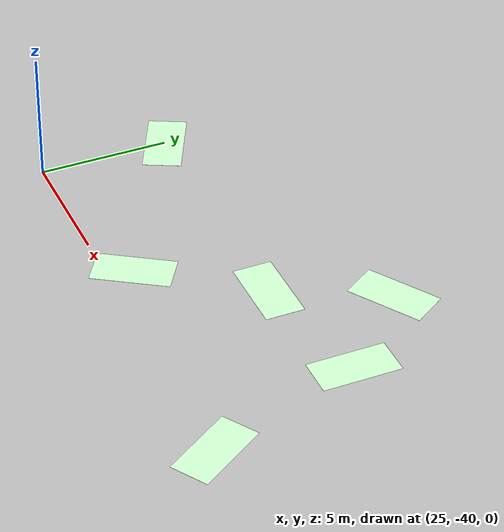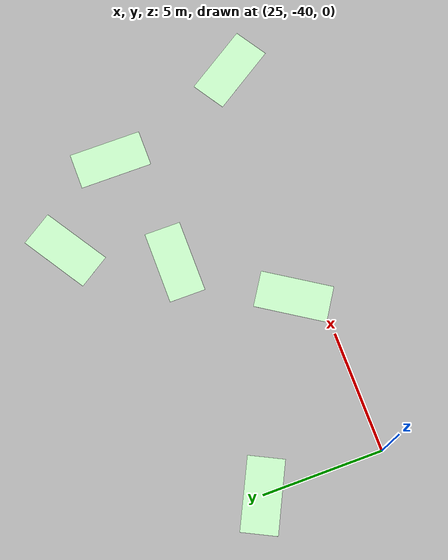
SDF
<sdf version="1.8">
 <world name="rescue_people_harmonic">
  <physics name="1ms" type="ignored">
   <max_step_size>0.004</max_step_size>
   <real_time_factor>1.0</real_time_factor>
  </physics>
  <plugin filename="gz-sim-physics-system" name="gz::sim::systems::Physics"/>
  <plugin filename="gz-sim-user-commands-system" name="gz::sim::systems::UserCommands"/>
  <plugin filename="gz-sim-scene-broadcaster-system" name="gz::sim::systems::SceneBroadcaster"/>
  <plugin filename="gz-sim-sensors-system" name="gz::sim::systems::Sensors">
   <render_engine>ogre2</render_engine>
  </plugin>
  <light type="directional" name="sun">
   <pose>0 0 10 0 0 0</pose>
   <diffuse>0.8 0.8 0.8 1</diffuse>
   <specular>0.2 0.2 0.2 1</specular>
   <attenuation>
    <range>1000</range>
    <constant>0.9</constant>
    <linear>0.01</linear>
    <quadratic>0.001</quadratic>
   </attenuation>
   <direction>-0.5 0.1 -0.9</direction>
  </light>
  <include><uri>model://face1</uri><pose>35 -35 0 0 0 -1.57</pose></include>
  <include><uri>model://face2</uri><pose>42 -40 0 0 0 0.57</pose></include>
  <include><uri>model://face3</uri><pose>32 -39 0 0 0 2.57</pose></include>
  <include><uri>model://face4</uri><pose>40 -34 0 0 0 0</pose></include>
  <include><uri>model://face5</uri><pose>25 -35 0 0 0 1.11</pose></include>
  <include><uri>model://face6</uri><pose>37 -31 0 0 0 -1.0</pose></include>
  <include><uri>model://ocean</uri><pose>0 0 -0.02 0 0 -1.57</pose></include>
 </world>
</sdf>

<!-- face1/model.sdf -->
<sdf version='1.6'>
  <model name='face1'>
    <static>true</static>
    <link name='link'>
      <collision name='collision'>
        <geometry>
          <plane>
            <normal>0 0 1</normal>
            <size>1 1</size>
        </plane>
      </geometry>
        <surface>
          <friction>
            <ode>
              <mu>0.5</mu>
              <mu2>.5</mu2>
          </ode>
        </friction>
      </surface>
    </collision>

      <visual name='visual_0'>
        <pose>0 0 0 0 0 0</pose>

        <cast_shadows>false</cast_shadows>
        <geometry>
          <plane>
            <normal>0 0 1</normal>
            <size>1.5 3</size>
        </plane>
      </geometry>
        <material>
          <ambient>0.8 1.0 0.8 1.0</ambient>
          <diffuse>0.8 1.0 0.8 1.0</diffuse>
          <specular>0.1 0.1 0.1 1.0</specular>
          <pbr>
            <metal>
              <albedo_map>model://face1/materials/textures/face1.png</albedo_map>
            </metal>
          </pbr>
        </material>
    </visual>
  </link>
</model>
</sdf>

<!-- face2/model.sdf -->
<sdf version='1.4'>
  <model name='face2'>
    <static>true</static>
    <link name='link'>
      <collision name='collision'>
        <geometry>
          <plane>
            <normal>0 0 1</normal>
            <size>1 1</size>
        </plane>
      </geometry>
        <surface>
          <friction>
            <ode>
              <mu>0.5</mu>
              <mu2>.5</mu2>
          </ode>
        </friction>
      </surface>
    </collision>

      <visual name='visual_0'>
        <pose>0 0 0 0 0 0</pose>

        <cast_shadows>false</cast_shadows>
        <geometry>
          <plane>
            <normal>0 0 1</normal>
            <size>1.5 3</size>
        </plane>
      </geometry>
        <material>
          <ambient>0.8 1.0 0.8 1.0</ambient>
          <diffuse>0.8 1.0 0.8 1.0</diffuse>
          <specular>0.1 0.1 0.1 1.0</specular>
          <pbr>
            <metal>
              <albedo_map>model://face2/materials/textures/face2.png</albedo_map>
            </metal>
          </pbr>
        </material>
    </visual>
  </link>
</model>
</sdf>

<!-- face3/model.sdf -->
<sdf version='1.4'>
  <model name='face3'>
    <static>true</static>
    <link name='link'>
      <collision name='collision'>
        <geometry>
          <plane>
            <normal>0 0 1</normal>
            <size>1 1</size>
        </plane>
      </geometry>
        <surface>
          <friction>
            <ode>
              <mu>0.5</mu>
              <mu2>.5</mu2>
          </ode>
        </friction>
      </surface>
    </collision>

      <visual name='visual_0'>
        <pose>0 0 0 0 0 0</pose>

        <cast_shadows>false</cast_shadows>
        <geometry>
          <plane>
            <normal>0 0 1</normal>
            <size>1.5 3</size>
        </plane>
      </geometry>
        <material>
          <ambient>0.8 1.0 0.8 1.0</ambient>
          <diffuse>0.8 1.0 0.8 1.0</diffuse>
          <specular>0.1 0.1 0.1 1.0</specular>
          <pbr>
            <metal>
              <albedo_map>model://face3/materials/textures/face3.png</albedo_map>
            </metal>
          </pbr>
        </material>
    </visual>
  </link>
</model>
</sdf>

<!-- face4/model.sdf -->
<sdf version='1.4'>
  <model name='face4'>
    <static>true</static>
    <link name='link'>
      <collision name='collision'>
        <geometry>
          <plane>
            <normal>0 0 1</normal>
            <size>1 1</size>
        </plane>
      </geometry>
        <surface>
          <friction>
            <ode>
              <mu>0.5</mu>
              <mu2>.5</mu2>
          </ode>
        </friction>
      </surface>
    </collision>

      <visual name='visual_0'>
        <pose>0 0 0 0 0 0</pose>

        <cast_shadows>false</cast_shadows>
        <geometry>
          <plane>
            <normal>0 0 1</normal>
            <size>1.5 3</size>
        </plane>
      </geometry>
        <material>
          <ambient>0.8 1.0 0.8 1.0</ambient>
          <diffuse>0.8 1.0 0.8 1.0</diffuse>
          <specular>0.1 0.1 0.1 1.0</specular>
          <pbr>
            <metal>
              <albedo_map>model://face4/materials/textures/face4.png</albedo_map>
            </metal>
          </pbr>
        </material>
    </visual>
  </link>
</model>
</sdf>

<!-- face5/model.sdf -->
<sdf version='1.4'>
  <model name='face5'>
    <static>true</static>
    <link name='link'>
      <collision name='collision'>
        <geometry>
          <plane>
            <normal>0 0 1</normal>
            <size>1 1</size>
        </plane>
      </geometry>
        <surface>
          <friction>
            <ode>
              <mu>0.5</mu>
              <mu2>.5</mu2>
          </ode>
        </friction>
      </surface>
    </collision>

      <visual name='visual_0'>
        <pose>0 0 0 0 0 0</pose>

        <cast_shadows>false</cast_shadows>
        <geometry>
          <plane>
            <normal>0 0 1</normal>
            <size>1.5 3</size>
        </plane>
      </geometry>
        <material>
          <ambient>0.8 1.0 0.8 1.0</ambient>
          <diffuse>0.8 1.0 0.8 1.0</diffuse>
          <specular>0.1 0.1 0.1 1.0</specular>
          <pbr>
            <metal>
              <albedo_map>model://face5/materials/textures/face5.png</albedo_map>
            </metal>
          </pbr>
        </material>
    </visual>
  </link>
</model>
</sdf>

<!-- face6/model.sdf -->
<sdf version='1.4'>
  <model name='face6'>
    <static>true</static>
    <link name='link'>
      <collision name='collision'>
        <geometry>
          <plane>
            <normal>0 0 1</normal>
            <size>1 1</size>
        </plane>
      </geometry>
        <surface>
          <friction>
            <ode>
              <mu>0.5</mu>
              <mu2>.5</mu2>
          </ode>
        </friction>
      </surface>
    </collision>

      <visual name='visual_0'>
        <pose>0 0 0 0 0 0</pose>

        <cast_shadows>false</cast_shadows>
        <geometry>
          <plane>
            <normal>0 0 1</normal>
            <size>1.5 3</size>
        </plane>
      </geometry>
        <material>
          <ambient>0.8 1.0 0.8 1.0</ambient>
          <diffuse>0.8 1.0 0.8 1.0</diffuse>
          <specular>0.1 0.1 0.1 1.0</specular>
          <pbr>
            <metal>
              <albedo_map>model://face6/materials/textures/face6.png</albedo_map>
            </metal>
          </pbr>
        </material>
    </visual>
  </link>
</model>
</sdf>

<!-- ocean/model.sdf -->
<sdf version="1.6">
    <model name="ocean">
        <static>true</static>
        <link name="link">
            <visual name="visual">
                <geometry>
                    <mesh>
                        <uri>meshes/waterlow_small.dae</uri>
                    </mesh>
                </geometry>
                <plugin filename="gz-sim-shader-param-system" name="gz::sim::systems::ShaderParam">
                    <shader language="glsl">
                        <vertex>materials/programs/GerstnerWaves_vs_330.glsl</vertex>
                        <fragment>materials/programs/GerstnerWaves_fs_330.glsl</fragment>
                    </shader>
                    <shader language="metal">
                        <vertex>materials/programs/GerstnerWaves_vs.metal</vertex>
                        <fragment>materials/programs/GerstnerWaves_fs.metal</fragment>
                    </shader>
                    <param>
                        <shader>vertex</shader>
                        <name>Nwaves</name>
                        <type>int</type>
                        <value>0</value>
                    </param>
                    <param>
                        <shader>vertex</shader>
                        <name>rescale</name>
                        <type>float</type>
                        <value>0.125</value>
                    </param>
                    <param>
                        <shader>vertex</shader>
                        <name>bumpScale</name>
                        <type>float_array</type>
                        <value>75 75</value>
                    </param>
                    <param>
                        <shader>vertex</shader>
                        <name>bumpSpeed</name>
                        <type>float_array</type>
                        <value>0.01 0.0</value>
                    </param>
                    <param>
                        <shader>vertex</shader>
                        <name>amplitude</name>
                        <type>float_array</type>
                        <value>0.42 0.28, 0.21</value>
                    </param>
                    <param>
                        <shader>vertex</shader>
                        <name>wavenumber</name>
                        <type>float_array</type>
                        <value>0.028 0.0896 0.0504</value>
                    </param>
                    <param>
                        <shader>vertex</shader>
                        <name>omega</name>
                        <type>float_array</type>
                        <value>0.5 1.7 1.0</value>
                    </param>
                    <param>
                        <shader>vertex</shader>
                        <name>dir0</name>
                        <type>float_array</type>
                        <value>-1.0 0.0</value>
                    </param>
                    <param>
                        <shader>vertex</shader>
                        <name>dir1</name>
                        <type>float_array</type>
                        <value>-0.7 0.7</value>
                    </param>
                    <param>
                        <shader>vertex</shader>
                        <name>dir2</name>
                        <type>float_array</type>
                        <value>0.7 0.7</value>
                    </param>
                    <param>
                        <shader>vertex</shader>
                        <name>steepness</name>
                        <type>float_array</type>
                        <value>1.0 1.5 0.8</value>
                    </param>
                    <param>
                        <shader>vertex</shader>
                        <name>tau</name>
                        <type>float</type>
                        <value>2.0</value>
                    </param>
                    <param>
                        <shader>vertex</shader>
                        <name>camera_position_object_space</name>
                    </param>
                    <param>
                        <shader>vertex</shader>
                        <name>worldviewproj_matrix</name>
                    </param>
                    <param>
                        <shader>vertex</shader>
                        <name>t</name>
                        <value>TIME</value>
                    </param>
                    <param>
                        <shader>fragment</shader>
                        <name>hdrMultiplier</name>
                        <type>float</type>
                        <value>0.4</value>
                    </param>
                    <param>
                        <shader>fragment</shader>
                        <name>fresnelPower</name>
                        <type>float</type>
                        <value>5.0</value>
                    </param>
                    <param>
                        <shader>fragment</shader>
                        <name>shallowColor</name>
                        <type>float_array</type>
                        <value>0.0 0.1 0.2 1.0</value>
                    </param>
                    <param>
                        <shader>fragment</shader>
                        <name>deepColor</name>
                        <type>float_array</type>
                        <value>0.0 0.05 0.02 1.0</value>
                    </param>
                    <param>
                        <shader>fragment</shader>
                        <name>cubeMap</name>
                        <type>texture_cube</type>
                        <value>materials/textures/skybox_lowres.dds</value>
                        <!-- arg: texture coord set index -->
                        <arg>1</arg>
                    </param>
                    <param>
                        <shader>fragment</shader>
                        <name>bumpMap</name>
                        <type>texture</type>
                        <value>materials/textures/wave_normals.dds</value>
                    </param>
                </plugin>
            </visual>
        </link>
    </model>
</sdf>
